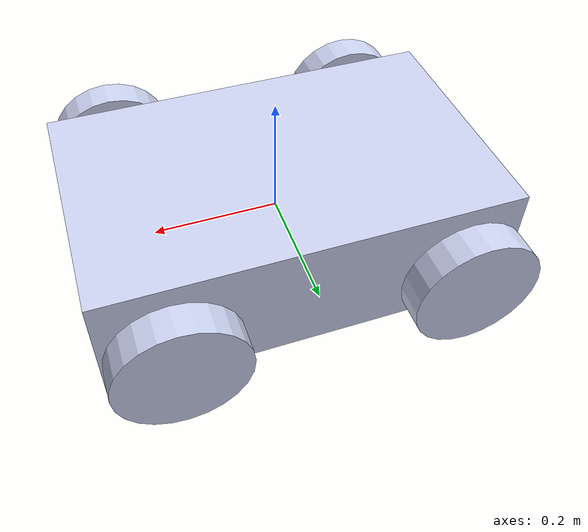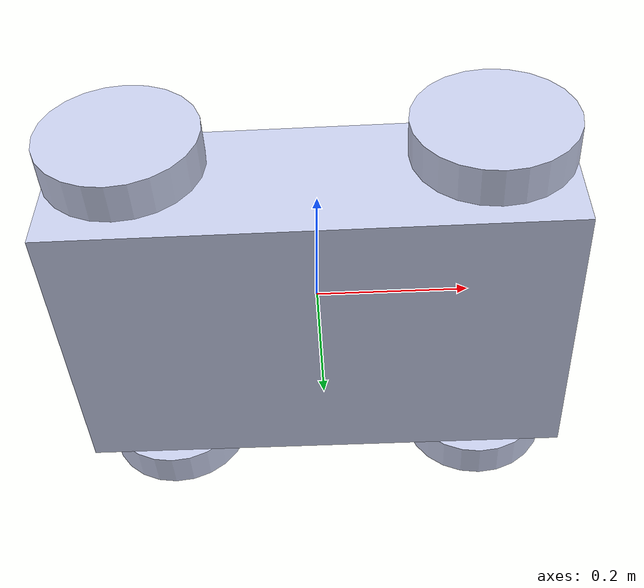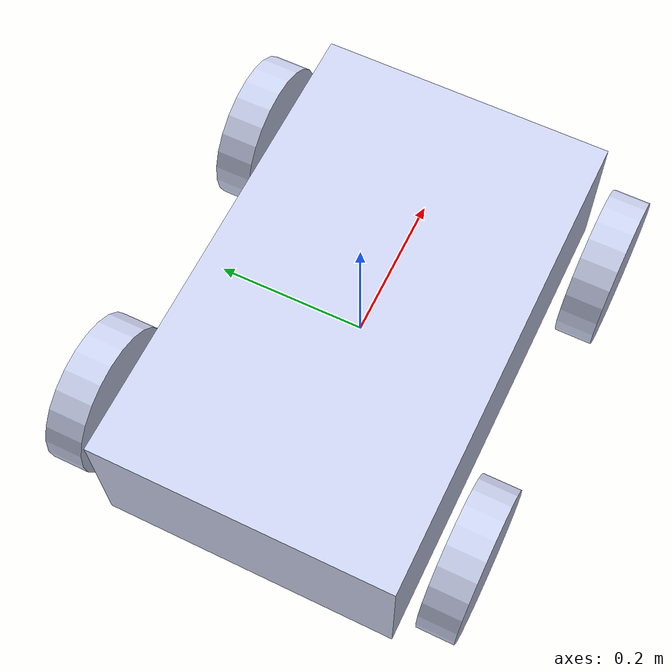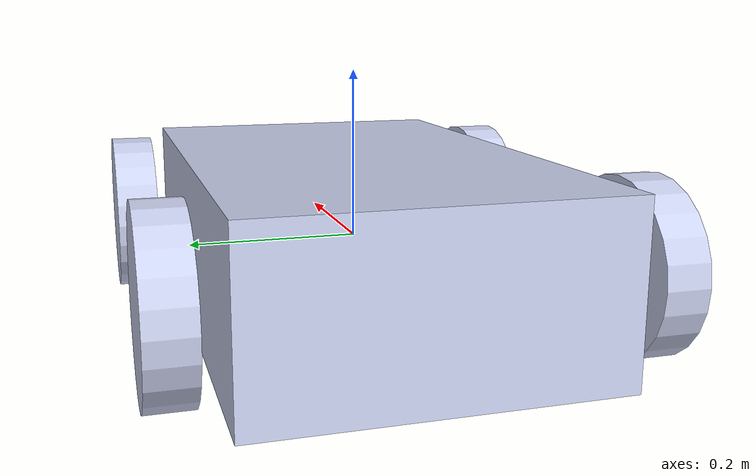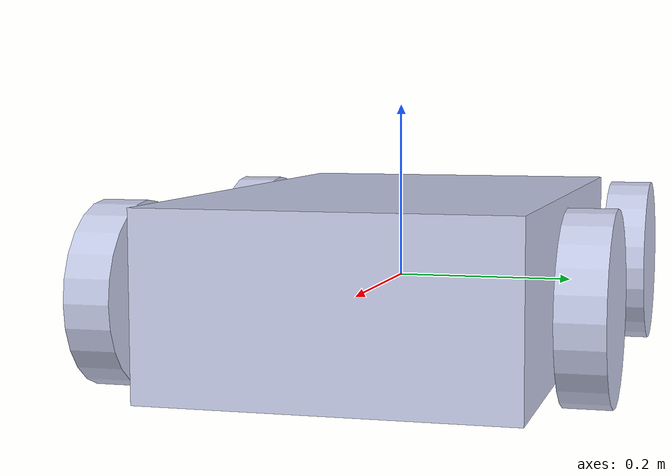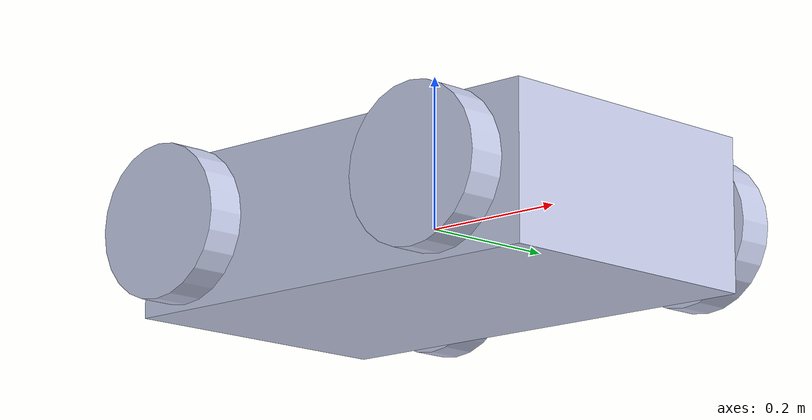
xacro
<?xml version="1.0"?>
<robot xmlns:xacro="http://ros.org/wiki/xacro">

    <xacro:include filename="robot_essentials.xacro"/>

    <link name="base_link">
        <visual>
            <origin xyz="0 0 0" rpy="1.5707963267949 0 3.14"/>
            <geometry>
                <box size="0.65 0.2 0.4"/>
            </geometry>
            <material name="">
                <color rgba="0.79216 0.81961 0.93333 1"/>
            </material>
        </visual>
        <collision>
            <origin xyz="0 0 0.05" rpy="1.5707963267949 0 3.14"/>
            <geometry>
                <box size="0.650 0.200 0.400"/>
            </geometry>
        </collision>
        <xacro:inertial_box mass="47" x="0.650" y="0.200" z="0.400">
            <origin xyz="0 0 0.05" rpy="0 0 0"/>
        </xacro:inertial_box>
    </link>

    <!-- Ruedas -->

    <!-- Articulaciones de ruedas -->

    <!-- WHEELS -->
    <!-- Fron left wheel -->
    <link name="front_left_wheel">
        <visual>
            <origin xyz="0 0 0" rpy="0 0 0" />
            <geometry>
                <cylinder radius="0.1" length="0.05"/>
            </geometry>
            <material name="">
                <color rgba="0.79216 0.81961 0.93333 1" />
            </material>
        </visual>
        <collision>
            <origin xyz="0 0 0" rpy="0 0 0" />
            <geometry>
                <cylinder radius="0.1" length="0.1"/>
            </geometry>
        </collision>
        <xacro:inertial_cylinder mass="2" length="0.1" radius="0.1">
            <origin xyz="0 0 0" rpy="0 0 0"/>
        </xacro:inertial_cylinder>
    </link>

    <joint name="front_left_wheel_joint" type="continuous">
        <axis xyz="0 0 1"/>
        <parent link ="base_link"/>
        <child link ="front_left_wheel"/>
        <origin rpy ="${-pi/2} 0 0" xyz= "0.220 0.250 0"/>
    </joint>

  <!-- Front right wheel -->
    <link name="front_right_wheel">
        <visual>
            <origin
            xyz="0 0 0"
            rpy="0 0 0" />
            <geometry>
                <cylinder radius="0.1" length="0.05"/>
            </geometry>
            <material name="">
                <color rgba="0.79216 0.81961 0.93333 1" />
            </material>
        </visual>
        <collision>
            <origin xyz="0 0 0" rpy="0 0 0" />
            <geometry>
                <cylinder radius="0.1" length="0.1"/>
            </geometry>
        </collision>
        <xacro:inertial_cylinder mass="2" length="0.1" radius="0.1">
            <origin xyz="0 0 0" rpy="0 0 0"/>
        </xacro:inertial_cylinder>
    </link>

    <joint name="front_right_wheel_joint" type="continuous">
        <axis xyz="0 0 -1"/>
        <parent link ="base_link"/>
        <child link ="front_right_wheel"/>
        <origin rpy ="${pi/2} 0 0" xyz= "0.220 -0.250 0"/>
    </joint>

  <!-- Rear left wheel -->
    <link name="rear_left_wheel">
        <visual>
            <origin
            xyz="0 0 0"
            rpy="0 0 0" />
            <geometry>
                <cylinder radius="0.1" length="0.05"/>
            </geometry>
            <material name="">
                <color rgba="0.79216 0.81961 0.93333 1" />
            </material>
        </visual>
        <collision>
            <origin xyz="0 0 0" rpy="0 0 0" />
            <geometry>
                <cylinder radius="0.1" length="0.1"/>
            </geometry>
        </collision>
        <xacro:inertial_cylinder mass="2" length="0.1" radius="0.1">
            <origin xyz="0 0 0" rpy="0 0 0"/>
        </xacro:inertial_cylinder>
    </link>

    <joint name="rear_left_wheel_joint" type="continuous">
        <axis xyz="0 0 1"/>
        <parent link ="base_link"/>
        <child link ="rear_left_wheel"/>
        <origin rpy ="${-pi/2} 0 0" xyz= "-0.220 0.250 0"/>
  </joint>

  <!-- Rear right wheel -->
    <link name="rear_right_wheel">
        <visual>
            <origin
            xyz="0 0 0"
            rpy="0 0 0" />
            <geometry>
                <cylinder radius="0.1" length="0.05"/>
            </geometry>
            <material name="">
                <color rgba="0.79216 0.81961 0.93333 1" />
            </material>
        </visual>
        <collision>
            <origin xyz="0 0 0" rpy="0 0 0" />
            <geometry>
                <cylinder radius="0.1" length="0.1"/>
            </geometry>
        </collision>
        <xacro:inertial_cylinder mass="2" length="0.1" radius="0.1">
            <origin xyz="0 0 0" rpy="0 0 0"/>
        </xacro:inertial_cylinder>
    </link>

    <joint name="rear_right_wheel_joint" type="continuous">
        <axis xyz="0 0 -1"/>
        <parent link ="base_link"/>
        <child link ="rear_right_wheel"/>
        <origin rpy ="${pi/2} 0 0" xyz= "-0.220 -0.250 0"/>
    </joint>

</robot>

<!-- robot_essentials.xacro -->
<robot xmlns:xacro="http://www.ros.org/wiki/xacro">

<!-- Macro para las ruedas -->
<xacro:macro name="robot_wheel" params="prefix">
    <link name="${prefix}_wheel">
        <visual>
            <origin
            xyz="0 0 0"
            rpy="1.5707963267949 0 0" />
            <geometry>
                <mesh filename="package://articubot_one/meshes/wheel.stl" />
            </geometry>
            <material name="">
                <color rgba="0.79216 0.81961 0.93333 1" />
            </material>
        </visual>
    </link>
</xacro:macro>

<!-- Macro para las articulaciones de las ruedas -->
<xacro:macro name="wheel_joint" params="prefix origin">
  <joint name="${prefix}_wheel_joint" type="continuous">
    <axis xyz="0 1 0"/>
    <parent link ="base_link"/>
    <child link ="${prefix}_wheel"/>
    <origin rpy ="0 0 0" xyz= "${origin}"/>
  </joint>
</xacro:macro>

<!-- Macros para las INERCIAS -->
<xacro:macro name="inertial_box" params="mass x y z *origin">
    <inertial>
        <xacro:insert_block name="origin"/>
        <mass value="${mass}" />
        <inertia ixx="${(1/12) * mass * (y*y+z*z)}" ixy="0.0" ixz="0.0"
                iyy="${(1/12) * mass * (x*x+z*z)}" iyz="0.0"
                izz="${(1/12) * mass * (x*x+y*y)}" />
    </inertial>
</xacro:macro>

<xacro:macro name="inertial_cylinder" params="mass length radius *origin">
    <inertial>
        <xacro:insert_block name="origin"/>
        <mass value="${mass}" />
        <inertia ixx="${(1/12) * mass * (3*radius*radius + length*length)}" ixy="0.0" ixz="0.0"
                iyy="${(1/12) * mass * (3*radius*radius + length*length)}" iyz="0.0"
                izz="${(1/2) * mass * (radius*radius)}" />
    </inertial>
</xacro:macro>

</robot>
